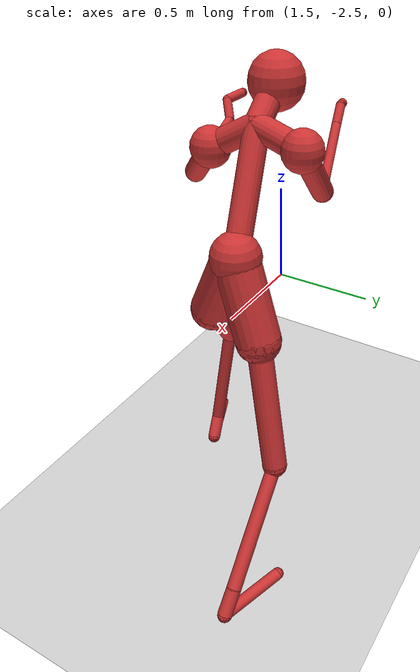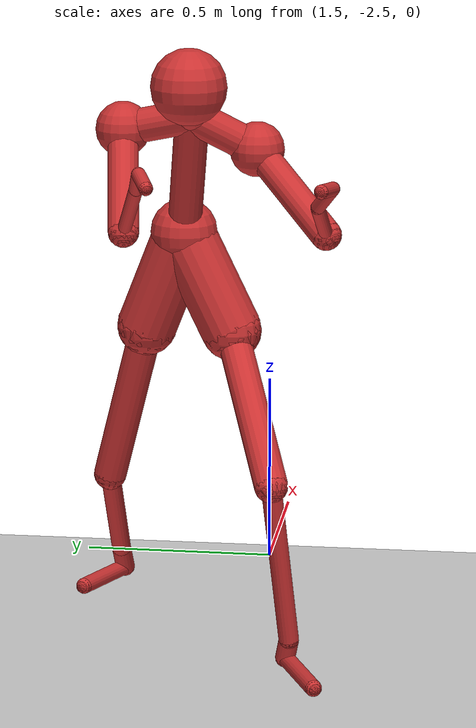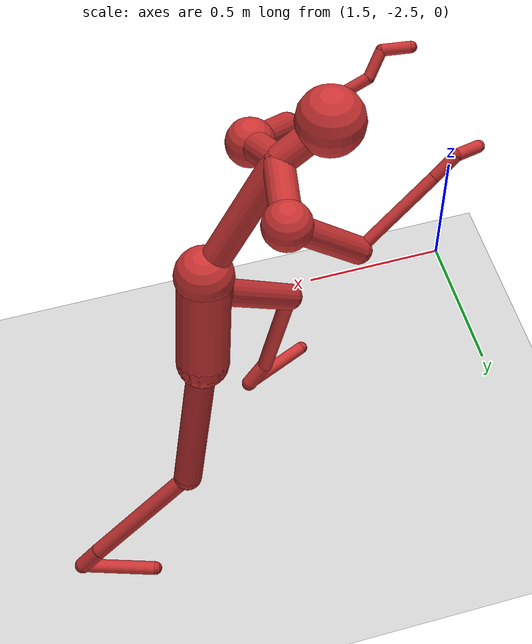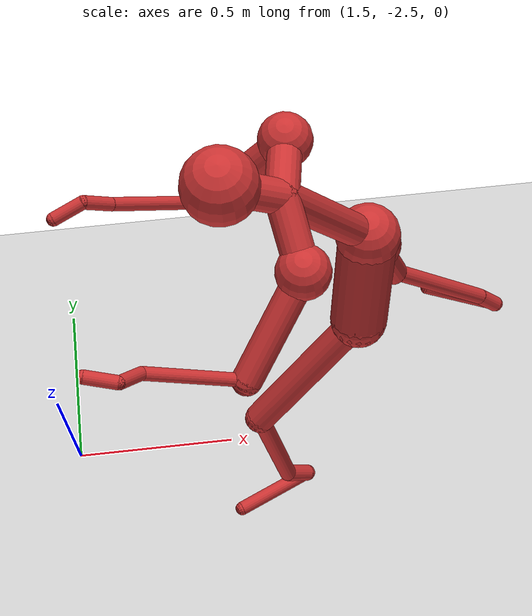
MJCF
<?xml version='1.0' encoding='utf-8'?>
<mujoco model="bjj_player1"><compiler angle="radian" coordinate="local" /><default><joint armature="0.01" damping="0.1" limited="true" /><geom contype="1" conaffinity="1" friction="1 0.5 0.5" /></default><asset><material name="red" rgba="0.8 0.2 0.2 1" /></asset><worldbody><geom name="floor" type="plane" pos="0 0 -0.6176" size="30 30 0.1" rgba="0.8 0.8 0.8 1" /><body name="player1_Core" pos="2.4768 -2.1348 0.6780"><geom type="sphere" size="0.1" material="red" /><freejoint name="player1_root" /><geom type="capsule" fromto="0 0 0 -0.0360 -0.1464 -0.2868" size="0.0900" material="red" /><body name="player1_LeftHip" pos="-0.0360 -0.1464 -0.2868"><geom type="sphere" size="0.09" material="red" /><joint name="player1_LeftHip_joint" type="ball" limited="false" damping="0.5" /><geom type="capsule" fromto="0 0 0 -0.3384 -0.1572 -0.3768" size="0.0500" material="red" /><body name="player1_LeftKnee" pos="-0.3384 -0.1572 -0.3768"><geom type="sphere" size="0.05" material="red" /><joint name="player1_LeftKnee_joint" type="hinge" axis="0 1 0" limited="true" range="-2.3 0" damping="0.5" /><geom type="capsule" fromto="0 0 0 0.0852 -0.0456 -0.4980" size="0.0300" material="red" /><body name="player1_LeftAnkle" pos="0.0852 -0.0456 -0.4980"><geom type="sphere" size="0.03" material="red" /><joint name="player1_LeftAnkle_joint" type="hinge" axis="1 0 0" limited="false" damping="0.5" /><geom type="capsule" fromto="0 0 0 0.0720 0.0180 -0.0804" size="0.0300" material="red" /><body name="player1_LeftHeel" pos="0.0720 0.0180 -0.0804"><geom type="sphere" size="0.03" material="red" /><joint name="player1_LeftHeel_joint" type="hinge" axis="1 0 0" limited="false" damping="0.5" /><geom type="capsule" fromto="0 0 0 -0.2520 -0.1092 -0.0024" size="0.0250" material="red" /><body name="player1_LeftToe" pos="-0.2520 -0.1092 -0.0024"><geom type="sphere" size="0.025" material="red" /><joint name="player1_LeftToe_joint" type="hinge" axis="1 0 0" limited="false" damping="0.5" /></body></body></body></body></body><geom type="capsule" fromto="0 0 0 0.0480 0.1188 -0.3012" size="0.0900" material="red" /><body name="player1_RightHip" pos="0.0480 0.1188 -0.3012"><geom type="sphere" size="0.09" material="red" /><joint name="player1_RightHip_joint" type="ball" limited="false" damping="0.5" /><geom type="capsule" fromto="0 0 0 0.1116 0.1320 -0.5016" size="0.0500" material="red" /><body name="player1_RightKnee" pos="0.1116 0.1320 -0.5016"><geom type="sphere" size="0.05" material="red" /><joint name="player1_RightKnee_joint" type="hinge" axis="0 1 0" limited="true" range="-2.3 0" damping="0.5" /><geom type="capsule" fromto="0 0 0 0.3624 0.0216 -0.3540" size="0.0300" material="red" /><body name="player1_RightAnkle" pos="0.3624 0.0216 -0.3540"><geom type="sphere" size="0.03" material="red" /><joint name="player1_RightAnkle_joint" type="hinge" axis="1 0 0" limited="false" damping="0.5" /><geom type="capsule" fromto="0 0 0 0.0708 -0.0012 -0.0852" size="0.0300" material="red" /><body name="player1_RightHeel" pos="0.0708 -0.0012 -0.0852"><geom type="sphere" size="0.03" material="red" /><joint name="player1_RightHeel_joint" type="hinge" axis="1 0 0" limited="false" damping="0.5" /><geom type="capsule" fromto="0 0 0 -0.2568 0.0924 0.0144" size="0.0250" material="red" /><body name="player1_RightToe" pos="-0.2568 0.0924 0.0144"><geom type="sphere" size="0.025" material="red" /><joint name="player1_RightToe_joint" type="hinge" axis="1 0 0" limited="false" damping="0.5" /></body></body></body></body></body><geom type="capsule" fromto="0 0 0 -0.2616 -0.0588 0.4008" size="0.0500" material="red" /><body name="player1_Neck" pos="-0.2616 -0.0588 0.4008"><geom type="sphere" size="0.05" material="red" /><joint name="player1_Neck_joint" type="hinge" axis="1 0 0" limited="false" damping="0.5" /><geom type="capsule" fromto="0 0 0 -0.1644 -0.0120 0.1152" size="0.0500" material="red" /><body name="player1_Head" pos="-0.1644 -0.0120 0.1152"><geom type="sphere" size="0.11" material="red" /><joint name="player1_Head_joint" type="hinge" axis="1 0 0" limited="false" damping="0.5" /></body><geom type="capsule" fromto="0 0 0 0.0384 -0.1836 -0.0996" size="0.0500" material="red" /><body name="player1_LeftShoulder" pos="0.0384 -0.1836 -0.0996"><geom type="sphere" size="0.08" material="red" /><joint name="player1_LeftShoulder_joint" type="ball" limited="false" damping="0.5" /><geom type="capsule" fromto="0 0 0 -0.1836 -0.2184 -0.2052" size="0.0450" material="red" /><body name="player1_LeftElbow" pos="-0.1836 -0.2184 -0.2052"><geom type="sphere" size="0.045" material="red" /><joint name="player1_LeftElbow_joint" type="hinge" axis="0 1 0" limited="true" range="-2.3 0" damping="0.5" /><geom type="capsule" fromto="0 0 0 -0.2808 -0.0024 0.1404" size="0.0200" material="red" /><body name="player1_LeftWrist" pos="-0.2808 -0.0024 0.1404"><geom type="sphere" size="0.02" material="red" /><joint name="player1_LeftWrist_joint" type="hinge" axis="1 0 0" limited="false" damping="0.5" /><geom type="capsule" fromto="0 0 0 -0.0552 -0.0468 0.0660" size="0.0200" material="red" /><body name="player1_LeftHand" pos="-0.0552 -0.0468 0.0660"><geom type="sphere" size="0.02" material="red" /><joint name="player1_LeftHand_joint" type="hinge" axis="1 0 0" limited="false" damping="0.5" /><geom type="capsule" fromto="0 0 0 -0.0936 0.0228 0.0108" size="0.0200" material="red" /><body name="player1_LeftFingers" pos="-0.0936 0.0228 0.0108"><geom type="sphere" size="0.02" material="red" /><joint name="player1_LeftFingers_joint" type="hinge" axis="1 0 0" limited="false" damping="0.5" /></body></body></body></body></body><geom type="capsule" fromto="0 0 0 0.0312 0.2052 -0.0480" size="0.0500" material="red" /><body name="player1_RightShoulder" pos="0.0312 0.2052 -0.0480"><geom type="sphere" size="0.08" material="red" /><joint name="player1_RightShoulder_joint" type="ball" limited="false" damping="0.5" /><geom type="capsule" fromto="0 0 0 -0.2424 -0.0360 -0.2496" size="0.0450" material="red" /><body name="player1_RightElbow" pos="-0.2424 -0.0360 -0.2496"><geom type="sphere" size="0.045" material="red" /><joint name="player1_RightElbow_joint" type="hinge" axis="0 1 0" limited="true" range="-2.3 0" damping="0.5" /><geom type="capsule" fromto="0 0 0 -0.2604 -0.0744 0.1800" size="0.0200" material="red" /><body name="player1_RightWrist" pos="-0.2604 -0.0744 0.1800"><geom type="sphere" size="0.02" material="red" /><joint name="player1_RightWrist_joint" type="hinge" axis="1 0 0" limited="false" damping="0.5" /><geom type="capsule" fromto="0 0 0 -0.0720 -0.0180 0.0588" size="0.0200" material="red" /><body name="player1_RightHand" pos="-0.0720 -0.0180 0.0588"><geom type="sphere" size="0.02" material="red" /><joint name="player1_RightHand_joint" type="hinge" axis="1 0 0" limited="false" damping="0.5" /><geom type="capsule" fromto="0 0 0 -0.0864 -0.0324 -0.0204" size="0.0200" material="red" /><body name="player1_RightFingers" pos="-0.0864 -0.0324 -0.0204"><geom type="sphere" size="0.02" material="red" /><joint name="player1_RightFingers_joint" type="hinge" axis="1 0 0" limited="false" damping="0.5" /></body></body></body></body></body></body></body></worldbody><actuator><position name="player1_LeftHip_joint_act" joint="player1_LeftHip_joint" kp="50" /><position name="player1_LeftKnee_joint_act" joint="player1_LeftKnee_joint" kp="50" /><position name="player1_LeftAnkle_joint_act" joint="player1_LeftAnkle_joint" kp="50" /><position name="player1_LeftHeel_joint_act" joint="player1_LeftHeel_joint" kp="50" /><position name="player1_LeftToe_joint_act" joint="player1_LeftToe_joint" kp="50" /><position name="player1_RightHip_joint_act" joint="player1_RightHip_joint" kp="50" /><position name="player1_RightKnee_joint_act" joint="player1_RightKnee_joint" kp="50" /><position name="player1_RightAnkle_joint_act" joint="player1_RightAnkle_joint" kp="50" /><position name="player1_RightHeel_joint_act" joint="player1_RightHeel_joint" kp="50" /><position name="player1_RightToe_joint_act" joint="player1_RightToe_joint" kp="50" /><position name="player1_Neck_joint_act" joint="player1_Neck_joint" kp="50" /><position name="player1_Head_joint_act" joint="player1_Head_joint" kp="50" /><position name="player1_LeftShoulder_joint_act" joint="player1_LeftShoulder_joint" kp="50" /><position name="player1_LeftElbow_joint_act" joint="player1_LeftElbow_joint" kp="50" /><position name="player1_LeftWrist_joint_act" joint="player1_LeftWrist_joint" kp="50" /><position name="player1_LeftHand_joint_act" joint="player1_LeftHand_joint" kp="50" /><position name="player1_LeftFingers_joint_act" joint="player1_LeftFingers_joint" kp="50" /><position name="player1_RightShoulder_joint_act" joint="player1_RightShoulder_joint" kp="50" /><position name="player1_RightElbow_joint_act" joint="player1_RightElbow_joint" kp="50" /><position name="player1_RightWrist_joint_act" joint="player1_RightWrist_joint" kp="50" /><position name="player1_RightHand_joint_act" joint="player1_RightHand_joint" kp="50" /><position name="player1_RightFingers_joint_act" joint="player1_RightFingers_joint" kp="50" /></actuator></mujoco>
